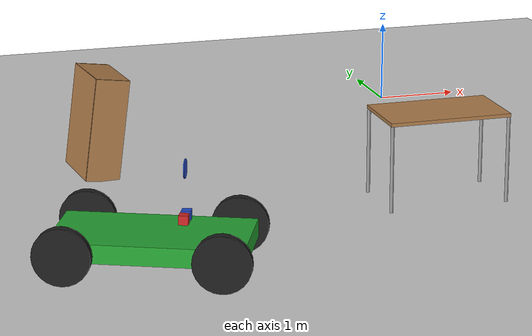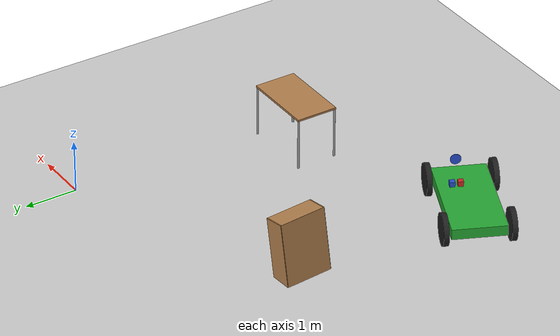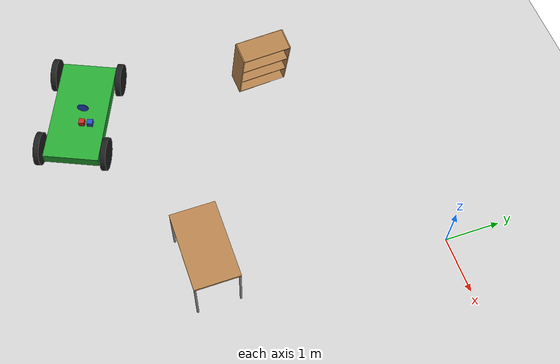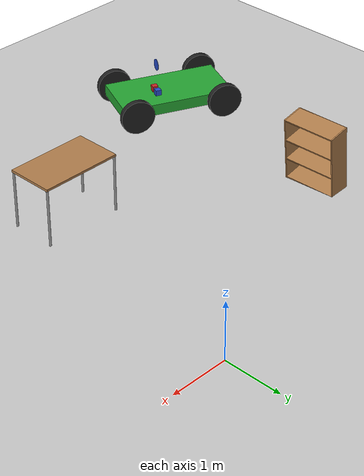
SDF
<sdf version="1.6">
 <world name="default">
  <model name="ground_plane">
   <static>1</static>
   <link name="link">
    <collision name="collision">
     <geometry><plane><normal>0 0 1</normal><size>5000 5000</size></plane></geometry>
     <surface><friction><ode><mu>1</mu><mu2>1</mu2></ode></friction></surface>
    </collision>
    <visual name="runway">
     <pose>0 0 0.005 0 0 -1.5707</pose>
     <cast_shadows>0</cast_shadows>
     <geometry><plane><normal>0 0 1</normal><size>1829 45</size></plane></geometry>
     <material>
      <script><uri>file://media/materials/scripts/gazebo.material</uri><name>Gazebo/Runway</name></script>
     </material>
    </visual>
    <visual name="grass">
     <pose>0 0 -0.1 0 -0 0</pose>
     <cast_shadows>0</cast_shadows>
     <geometry><plane><normal>0 0 1</normal><size>5000 5000</size></plane></geometry>
     <material>
      <script><uri>file://media/materials/scripts/gazebo.material</uri><name>Gazebo/Grass</name></script>
     </material>
    </visual>
   </link>
  </model>
  <model name="bookshelf_clone_0">
   <static>1</static>
   <link name="link">
    <inertial><mass>1</mass></inertial>
    <collision name="back">
     <pose>0 0.005 0.6 0 -0 0</pose>
     <geometry><box><size>0.9 0.01 1.2</size></box></geometry>
    </collision>
    <visual name="visual1">
     <pose>0 0.005 0.6 0 -0 0</pose>
     <geometry><box><size>0.9 0.01 1.2</size></box></geometry>
     <material>
      <script><uri>file://media/materials/scripts/gazebo.material</uri><name>Gazebo/Wood</name></script>
     </material>
    </visual>
    <collision name="left_side">
     <pose>0.45 -0.195 0.6 0 -0 0</pose>
     <geometry><box><size>0.02 0.4 1.2</size></box></geometry>
    </collision>
    <visual name="visual2">
     <pose>0.45 -0.195 0.6 0 -0 0</pose>
     <geometry><box><size>0.02 0.4 1.2</size></box></geometry>
     <material>
      <script><uri>file://media/materials/scripts/gazebo.material</uri><name>Gazebo/Wood</name></script>
     </material>
    </visual>
    <collision name="right_side">
     <pose>-0.45 -0.195 0.6 0 -0 0</pose>
     <geometry><box><size>0.02 0.4 1.2</size></box></geometry>
    </collision>
    <visual name="visual3">
     <pose>-0.45 -0.195 0.6 0 -0 0</pose>
     <geometry><box><size>0.02 0.4 1.2</size></box></geometry>
     <material>
      <script><uri>file://media/materials/scripts/gazebo.material</uri><name>Gazebo/Wood</name></script>
     </material>
    </visual>
    <collision name="bottom">
     <pose>0 -0.195 0.03 0 -0 0</pose>
     <geometry><box><size>0.88 0.4 0.06</size></box></geometry>
    </collision>
    <visual name="visual4">
     <pose>0 -0.195 0.03 0 -0 0</pose>
     <geometry><box><size>0.88 0.4 0.06</size></box></geometry>
     <material>
      <script><uri>file://media/materials/scripts/gazebo.material</uri><name>Gazebo/Wood</name></script>
     </material>
    </visual>
    <collision name="top">
     <pose>0 -0.195 1.19 0 -0 0</pose>
     <geometry><box><size>0.88 0.4 0.02</size></box></geometry>
    </collision>
    <visual name="visual5">
     <pose>0 -0.195 1.19 0 -0 0</pose>
     <geometry><box><size>0.88 0.4 0.02</size></box></geometry>
     <material>
      <script><uri>file://media/materials/scripts/gazebo.material</uri><name>Gazebo/Wood</name></script>
     </material>
    </visual>
    <collision name="low_shelf">
     <pose>0 -0.195 0.43 0 -0 0</pose>
     <geometry><box><size>0.88 0.4 0.02</size></box></geometry>
    </collision>
    <visual name="visual6">
     <pose>0 -0.195 0.43 0 -0 0</pose>
     <geometry><box><size>0.88 0.4 0.02</size></box></geometry>
     <material>
      <script><uri>file://media/materials/scripts/gazebo.material</uri><name>Gazebo/Wood</name></script>
     </material>
    </visual>
    <collision name="high_shelf">
     <pose>0 -0.195 0.8 0 -0 0</pose>
     <geometry><box><size>0.88 0.4 0.02</size></box></geometry>
    </collision>
    <visual name="visual7">
     <pose>0 -0.195 0.8 0 -0 0</pose>
     <geometry><box><size>0.88 0.4 0.02</size></box></geometry>
     <material>
      <script><uri>file://media/materials/scripts/gazebo.material</uri><name>Gazebo/Wood</name></script>
     </material>
    </visual>
   </link>
   <pose>-4.518 -1.99169 0 0.138995 0.027715 1.63492</pose>
  </model>
  <model name="table">
   <static>0</static>
   <link name="link">
    <collision name="surface">
     <pose>0 0 1 0 -0 0</pose>
     <geometry><box><size>1.5 0.8 0.03</size></box></geometry>
     <surface><friction><ode><mu>0.6</mu><mu2>0.6</mu2></ode></friction></surface>
    </collision>
    <visual name="visual1">
     <pose>0 0 1 0 -0 0</pose>
     <geometry><box><size>1.4 0.8 0.04</size></box></geometry>
     <material>
      <script><uri>file://media/materials/scripts/gazebo.material</uri><name>Gazebo/Wood</name></script>
     </material>
    </visual>
    <collision name="front_left_leg">
     <pose>0.68 0.38 0.5 0 -0 0</pose>
     <geometry><cylinder><radius>0.02</radius><length>1</length></cylinder></geometry>
    </collision>
    <visual name="front_left_leg">
     <pose>0.68 0.38 0.5 0 -0 0</pose>
     <geometry><cylinder><radius>0.02</radius><length>1</length></cylinder></geometry>
     <material>
      <script><uri>file://media/materials/scripts/gazebo.material</uri><name>Gazebo/Grey</name></script>
     </material>
    </visual>
    <collision name="front_right_leg">
     <pose>0.68 -0.38 0.5 0 -0 0</pose>
     <geometry><cylinder><radius>0.02</radius><length>1</length></cylinder></geometry>
    </collision>
    <visual name="front_right_leg">
     <pose>0.68 -0.38 0.5 0 -0 0</pose>
     <geometry><cylinder><radius>0.02</radius><length>1</length></cylinder></geometry>
     <material>
      <script><uri>file://media/materials/scripts/gazebo.material</uri><name>Gazebo/Grey</name></script>
     </material>
    </visual>
    <collision name="back_right_leg">
     <pose>-0.68 -0.38 0.5 0 -0 0</pose>
     <geometry><cylinder><radius>0.02</radius><length>1</length></cylinder></geometry>
    </collision>
    <visual name="back_right_leg">
     <pose>-0.68 -0.38 0.5 0 -0 0</pose>
     <geometry><cylinder><radius>0.02</radius><length>1</length></cylinder></geometry>
     <material>
      <script><uri>file://media/materials/scripts/gazebo.material</uri><name>Gazebo/Grey</name></script>
     </material>
    </visual>
    <collision name="back_left_leg">
     <pose>-0.68 0.38 0.5 0 -0 0</pose>
     <geometry><cylinder><radius>0.02</radius><length>1</length></cylinder></geometry>
    </collision>
    <visual name="back_left_leg">
     <pose>-0.68 0.38 0.5 0 -0 0</pose>
     <geometry><cylinder><radius>0.02</radius><length>1</length></cylinder></geometry>
     <material>
      <script><uri>file://media/materials/scripts/gazebo.material</uri><name>Gazebo/Grey</name></script>
     </material>
    </visual>
    <inertial>
     <inertia><ixx>1</ixx><ixy>0</ixy><ixz>0</ixz><iyy>1</iyy><iyz>0</iyz><izz>1</izz></inertia>
     <mass>1</mass>
    </inertial>
   </link>
   <pose>-0.828046 -4.09348 -9e-06 0 -1e-06 0</pose>
  </model>
  <model name="car">
   <link name="chassis">
    <pose>0 0 0.3 0 -0 0</pose>
    <collision name="collision"><geometry><box><size>2 1 0.2</size></box></geometry></collision>
    <visual name="visual">
     <geometry><box><size>2 1 0.2</size></box></geometry>
     <material>
      <script><uri>file://media/materials/scripts/gazebo.material</uri><name>Gazebo/Green</name></script>
     </material>
    </visual>
    <inertial>
     <inertia><ixx>1</ixx><ixy>0</ixy><ixz>0</ixz><iyy>1</iyy><iyz>0</iyz><izz>1</izz></inertia>
     <mass>1</mass>
    </inertial>
   </link>
   <link name="front_left_wheel">
    <pose>0.8 0.6 0.3 -0 1.5707 1.5707</pose>
    <collision name="collision">
     <geometry><cylinder><radius>0.3</radius><length>0.1</length></cylinder></geometry>
    </collision>
    <visual name="visual">
     <geometry><cylinder><radius>0.3</radius><length>0.1</length></cylinder></geometry>
     <material>
      <script><uri>file://media/materials/scripts/gazebo.material</uri><name>Gazebo/Black</name></script>
     </material>
    </visual>
    <inertial>
     <inertia><ixx>1</ixx><ixy>0</ixy><ixz>0</ixz><iyy>1</iyy><iyz>0</iyz><izz>1</izz></inertia>
     <mass>1</mass>
    </inertial>
   </link>
   <link name="front_right_wheel">
    <pose>0.8 -0.6 0.3 -0 1.5707 1.5707</pose>
    <collision name="collision">
     <geometry><cylinder><radius>0.3</radius><length>0.1</length></cylinder></geometry>
    </collision>
    <visual name="visual">
     <geometry><cylinder><radius>0.3</radius><length>0.1</length></cylinder></geometry>
     <material>
      <script><uri>file://media/materials/scripts/gazebo.material</uri><name>Gazebo/Black</name></script>
     </material>
    </visual>
    <inertial>
     <inertia><ixx>1</ixx><ixy>0</ixy><ixz>0</ixz><iyy>1</iyy><iyz>0</iyz><izz>1</izz></inertia>
     <mass>1</mass>
    </inertial>
   </link>
   <link name="back_right_wheel">
    <pose>-0.8 -0.6 0.3 -0 1.5707 1.5707</pose>
    <collision name="collision">
     <geometry><cylinder><radius>0.3</radius><length>0.1</length></cylinder></geometry>
    </collision>
    <visual name="visual">
     <geometry><cylinder><radius>0.3</radius><length>0.1</length></cylinder></geometry>
     <material>
      <script><uri>file://media/materials/scripts/gazebo.material</uri><name>Gazebo/Black</name></script>
     </material>
    </visual>
    <inertial>
     <inertia><ixx>1</ixx><ixy>0</ixy><ixz>0</ixz><iyy>1</iyy><iyz>0</iyz><izz>1</izz></inertia>
     <mass>1</mass>
    </inertial>
   </link>
   <link name="back_left_wheel">
    <pose>-0.8 0.6 0.3 -0 1.5707 1.5707</pose>
    <collision name="collision">
     <geometry><cylinder><radius>0.3</radius><length>0.1</length></cylinder></geometry>
    </collision>
    <visual name="visual">
     <geometry><cylinder><radius>0.3</radius><length>0.1</length></cylinder></geometry>
     <material>
      <script><uri>file://media/materials/scripts/gazebo.material</uri><name>Gazebo/Black</name></script>
     </material>
    </visual>
    <inertial>
     <inertia><ixx>1</ixx><ixy>0</ixy><ixz>0</ixz><iyy>1</iyy><iyz>0</iyz><izz>1</izz></inertia>
     <mass>1</mass>
    </inertial>
   </link>
   <link name="gas_pedal">
    <pose>0.3 0.1 0.5 0 -0 0</pose>
    <collision name="collision"><geometry><box><size>0.1 0.1 0.1</size></box></geometry></collision>
    <visual name="visual">
     <geometry><box><size>0.1 0.1 0.1</size></box></geometry>
     <material>
      <script><uri>file://media/materials/scripts/gazebo.material</uri><name>Gazebo/Red</name></script>
     </material>
    </visual>
    <inertial>
     <inertia><ixx>1</ixx><ixy>0</ixy><ixz>0</ixz><iyy>1</iyy><iyz>0</iyz><izz>1</izz></inertia>
     <mass>1</mass>
    </inertial>
   </link>
   <link name="brake_pedal">
    <pose>0.3 0.25 0.5 0 -0 0</pose>
    <collision name="collision"><geometry><box><size>0.1 0.1 0.1</size></box></geometry></collision>
    <visual name="visual">
     <geometry><box><size>0.1 0.1 0.1</size></box></geometry>
     <material>
      <script><uri>file://media/materials/scripts/gazebo.material</uri><name>Gazebo/Blue</name></script>
     </material>
    </visual>
    <inertial>
     <inertia><ixx>1</ixx><ixy>0</ixy><ixz>0</ixz><iyy>1</iyy><iyz>0</iyz><izz>1</izz></inertia>
     <mass>1</mass>
    </inertial>
   </link>
   <link name="steering_wheel">
    <pose>0.3 0.2 1 0 1.5707 0</pose>
    <collision name="collision">
     <geometry><cylinder><radius>0.1</radius><length>0.01</length></cylinder></geometry>
    </collision>
    <visual name="visual">
     <geometry><cylinder><radius>0.1</radius><length>0.01</length></cylinder></geometry>
     <material>
      <script><uri>file://media/materials/scripts/gazebo.material</uri><name>Gazebo/Blue</name></script>
     </material>
    </visual>
    <inertial>
     <inertia><ixx>1</ixx><ixy>0</ixy><ixz>0</ixz><iyy>1</iyy><iyz>0</iyz><izz>1</izz></inertia>
     <mass>1</mass>
    </inertial>
   </link>
   <joint name="gas_joint" type="prismatic">
    <parent>chassis</parent>
    <child>gas_pedal</child>
    <axis>
     <xyz>1 0 0</xyz>
     <limit><lower>0</lower><upper>0.2</upper></limit>
     <use_parent_model_frame>1</use_parent_model_frame>
     <dynamics><spring_reference>0</spring_reference><spring_stiffness>0</spring_stiffness></dynamics>
    </axis>
   </joint>
   <joint name="brake_joint" type="prismatic">
    <parent>chassis</parent>
    <child>brake_pedal</child>
    <axis>
     <xyz>1 0 0</xyz>
     <limit><lower>0</lower><upper>0.2</upper></limit>
     <use_parent_model_frame>1</use_parent_model_frame>
     <dynamics><spring_reference>0</spring_reference><spring_stiffness>0</spring_stiffness></dynamics>
    </axis>
   </joint>
   <joint name="steering_joint" type="revolute">
    <parent>chassis</parent>
    <child>steering_wheel</child>
    <axis>
     <xyz>1 0 0</xyz>
     <limit><lower>-7.853</lower><upper>7.853</upper></limit>
     <use_parent_model_frame>1</use_parent_model_frame>
     <dynamics><spring_reference>0</spring_reference><spring_stiffness>0</spring_stiffness></dynamics>
    </axis>
   </joint>
   <joint name="front_left_joint" type="revolute2">
    <parent>chassis</parent>
    <child>front_left_wheel</child>
    <axis>
     <xyz>0 0 1</xyz>
     <limit><lower>7.95358e-05</lower><upper>7.95358e-05</upper></limit>
     <use_parent_model_frame>1</use_parent_model_frame>
     <dynamics><spring_reference>0</spring_reference><spring_stiffness>0</spring_stiffness></dynamics>
    </axis>
    <axis2>
     <xyz>0 1 0</xyz>
     <use_parent_model_frame>1</use_parent_model_frame>
     <dynamics><spring_reference>0</spring_reference><spring_stiffness>0</spring_stiffness></dynamics>
    </axis2>
    <physics><ode><limit><cfm>0</cfm><erp>0.9</erp></limit></ode></physics>
   </joint>
   <joint name="front_right_joint" type="revolute2">
    <parent>chassis</parent>
    <child>front_right_wheel</child>
    <axis>
     <xyz>0 0 1</xyz>
     <limit><lower>7.95358e-05</lower><upper>7.95358e-05</upper></limit>
     <use_parent_model_frame>1</use_parent_model_frame>
     <dynamics><spring_reference>0</spring_reference><spring_stiffness>0</spring_stiffness></dynamics>
    </axis>
    <axis2>
     <xyz>0 1 0</xyz>
     <use_parent_model_frame>1</use_parent_model_frame>
     <dynamics><spring_reference>0</spring_reference><spring_stiffness>0</spring_stiffness></dynamics>
    </axis2>
    <physics><ode><limit><cfm>0</cfm><erp>0.9</erp></limit></ode></physics>
   </joint>
   <joint name="back_right_joint" type="revolute2">
    <parent>chassis</parent>
    <child>back_right_wheel</child>
    <axis>
     <xyz>0 0 1</xyz>
     <limit><lower>0</lower><upper>0</upper></limit>
     <use_parent_model_frame>1</use_parent_model_frame>
     <dynamics><spring_reference>0</spring_reference><spring_stiffness>0</spring_stiffness></dynamics>
    </axis>
    <axis2>
     <xyz>0 1 0</xyz>
     <use_parent_model_frame>1</use_parent_model_frame>
     <dynamics><spring_reference>0</spring_reference><spring_stiffness>0</spring_stiffness></dynamics>
    </axis2>
    <physics><ode><limit><cfm>0</cfm><erp>0.9</erp></limit></ode></physics>
   </joint>
   <joint name="back_left_joint" type="revolute2">
    <parent>chassis</parent>
    <child>back_left_wheel</child>
    <axis>
     <xyz>0 0 1</xyz>
     <limit><lower>0</lower><upper>0</upper></limit>
     <use_parent_model_frame>1</use_parent_model_frame>
     <dynamics><spring_reference>0</spring_reference><spring_stiffness>0</spring_stiffness></dynamics>
    </axis>
    <axis2>
     <xyz>0 1 0</xyz>
     <use_parent_model_frame>1</use_parent_model_frame>
     <dynamics><spring_reference>0</spring_reference><spring_stiffness>0</spring_stiffness></dynamics>
    </axis2>
    <physics><ode><limit><cfm>0</cfm><erp>0.9</erp></limit></ode></physics>
   </joint>
   <plugin name="vehicle" filename="libVehiclePlugin.so">
    <front_left>front_left_joint</front_left>
    <front_right>front_right_joint</front_right>
    <back_left>back_left_joint</back_left>
    <back_right>back_right_joint</back_right>
    <gas>gas_joint</gas>
    <brake>brake_joint</brake>
    <steering>steering_joint</steering>
    <front_power>10</front_power>
    <rear_power>10</rear_power>
    <tire_angle_range>0.5</tire_angle_range>
    <max_speed>10</max_speed>
    <aero_load>0.1</aero_load>
   </plugin>
   <pose>-4.39795 -5.39036 -0.002616 -0.000273 0.000907 -0.423361</pose>
  </model>
 </world>
</sdf>
